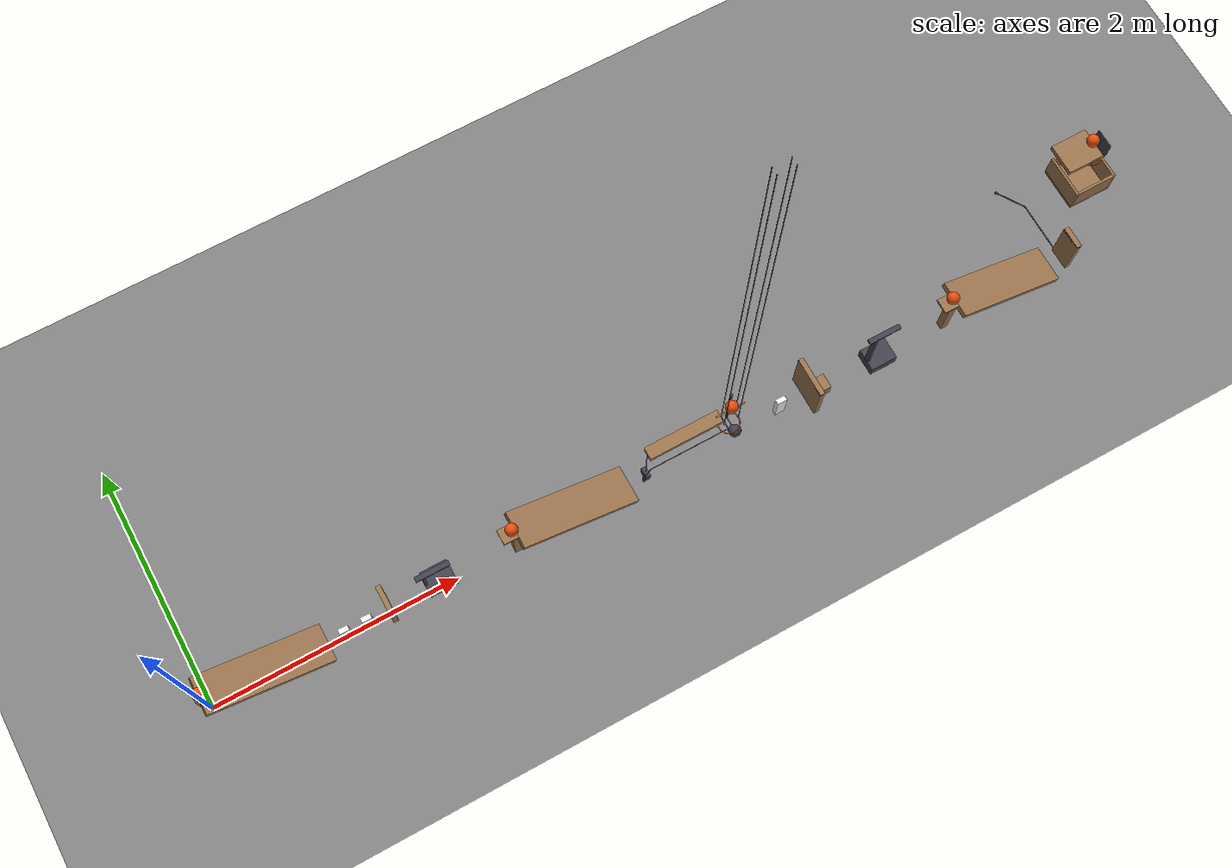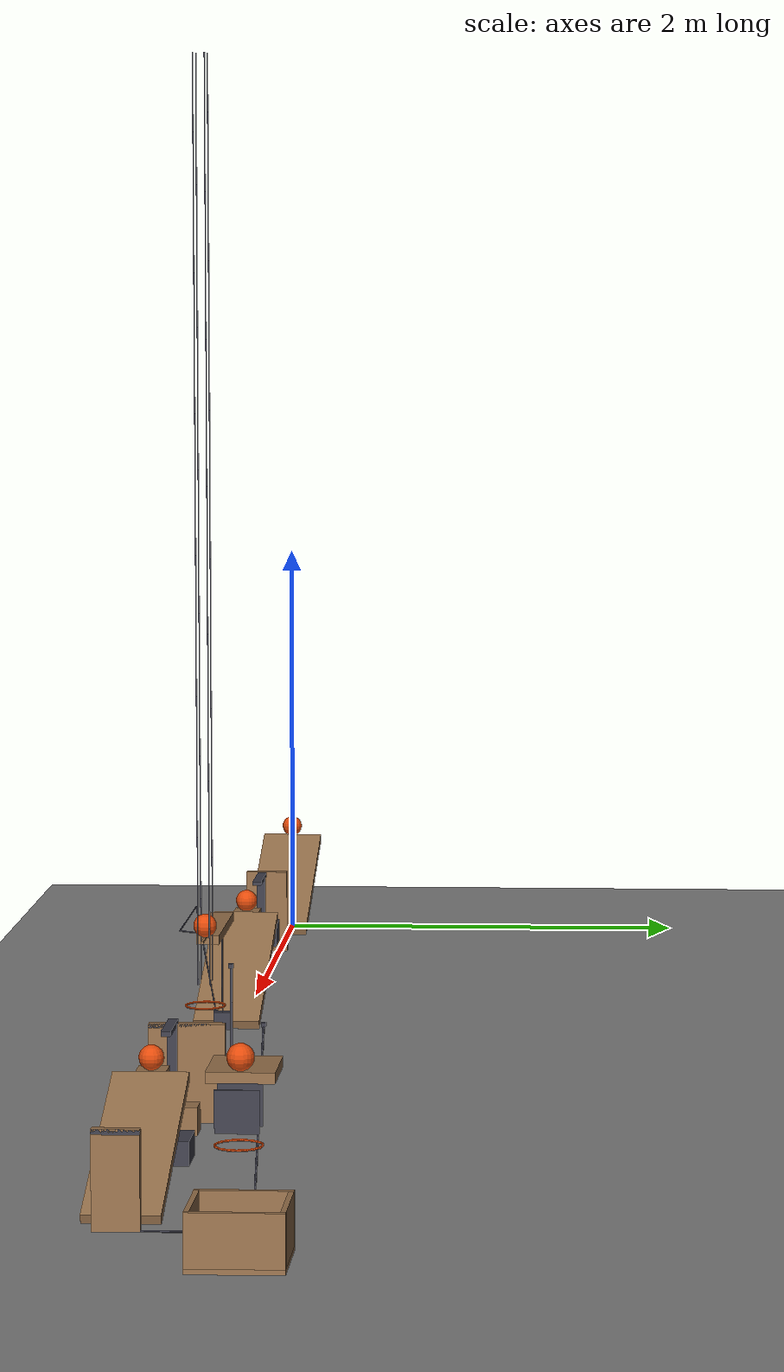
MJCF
<mujoco model="gravity_cascade_with_restrained_spring_launcher">
  <compiler angle="radian"/>
  <option timestep="0.002"/>
  <worldbody>
    <geom name="floor" type="plane" size="16 16 0.1" friction="0.7 0.005 0.002"/>
    <body name="ramp1">
      <geom name="ramp1_deck" type="box" pos="0.469846 0 0.302216" size="0.5 0.15 0.02" euler="0 0.349066 0" friction="0.7 0 0" solref="0.01 0.690107" rgba="0.6 0.45 0.3 1"/>
      <geom name="ramp1_leg" type="box" pos="0 0 0.236613" size="0.03 0.03 0.236613" friction="0.7 0 0" solref="0.01 0.690107" rgba="0.6 0.45 0.3 1"/>
    </body>
    <body name="ball1" pos="0.0239414 0 0.539005">
      <freejoint/>
      <geom name="ball1" type="sphere" pos="0 0 0" size="0.05" mass="0.2" condim="6" friction="0.7 0 0" solref="0.01 0.690107" rgba="0.9 0.3 0.05 1"/>
    </body>
    <body name="domino1" pos="1.08653 0 0.12">
      <freejoint/>
      <geom name="domino1" type="box" pos="0 0 0" size="0.04 0.02 0.12" mass="0.25" friction="0.7 0 0" solref="0.01 0.690107" rgba="0.95 0.95 0.95 1"/>
    </body>
    <body name="domino2" pos="1.26653 0 0.12">
      <freejoint/>
      <geom name="domino2" type="box" pos="0 0 0" size="0.04 0.02 0.12" mass="0.25" friction="0.7 0 0" solref="0.01 0.690107" rgba="0.95 0.95 0.95 1"/>
    </body>
    <body name="flap1" pos="1.44653 0 0.12">
      <joint name="flap1_hinge" type="hinge" pos="0 0 0" axis="0 1 0" limited="true" range="0 1.13446" damping="0.04"/>
      <geom name="flap1" type="box" pos="0 0 0.2" size="0.02 0.1 0.2" mass="0.3" friction="0.7 0 0" solref="0.01 0.690107" rgba="0.6 0.45 0.3 1"/>
    </body>
    <body name="cart1" pos="1.85653 0 0.28">
      <joint name="cart1_track" type="slide" pos="0 0 0" axis="1 0 0" limited="true" range="0 0.55" damping="0.2"/>
      <geom name="cart1" type="box" pos="0 0 0" size="0.11 0.09 0.05" mass="0.494" friction="0.7 0 0" solref="0.01 0.690107" rgba="0.25 0.25 0.3 1"/>
      <geom name="cart1 pusher stem" type="box" pos="-0.1 0 0.155" size="0.01 0.02 0.105" mass="0.003" friction="0.7 0 0" solref="0.01 0.690107" rgba="0.25 0.25 0.3 1"/>
      <geom name="cart1 pusher" type="box" pos="-0.025 0 0.26202" size="0.135 0.02 0.01" mass="0.003" friction="0.7 0 0" solref="0.01 0.690107" rgba="0.25 0.25 0.3 1"/>
    </body>
    <body name="ramp2">
      <geom name="ramp2_deck" type="box" pos="2.95454 0 0.302216" size="0.5 0.15 0.02" euler="0 0.349066 0" friction="0.7 0 0" solref="0.01 0.690107" rgba="0.6 0.45 0.3 1"/>
      <geom name="ramp2_leg" type="box" pos="2.48469 0 0.236613" size="0.03 0.03 0.236613" friction="0.7 0 0" solref="0.01 0.690107" rgba="0.6 0.45 0.3 1"/>
    </body>
    <body name="ramp2 starter">
      <geom name="ramp2 starter" type="box" pos="2.43153 0 0.48202" size="0.06 0.06 0.01" friction="0.7 0 0" solref="0.01 0.690107" rgba="0.6 0.45 0.3 1"/>
    </body>
    <body name="ball2" pos="2.46653 0 0.54202">
      <freejoint/>
      <geom name="ball2" type="sphere" pos="0 0 0" size="0.05" mass="0.2" condim="6" friction="0.7 0 0" solref="0.01 0.690107" rgba="0.9 0.3 0.05 1"/>
    </body>
    <body name="lever1" pos="3.87123 -0.05 0.65">
      <joint name="lever1_hinge" type="hinge" pos="0 0 0" axis="0 1 0" limited="true" range="-0.785398 0" stiffness="6" springref="-0.785398" damping="0.04"/>
      <geom name="lever1" type="box" pos="0 0.05 0" size="0.3 0.05 0.02" mass="0.296" friction="0.7 0 0" solref="0.01 0.690107" rgba="0.6 0.45 0.3 1"/>
      <geom name="lever1 left striker" type="box" pos="-0.3 0.05 -0.47" size="0.02 0.04 0.04" mass="0.2" friction="0.7 0 0" solref="0.01 0.690107" rgba="0.25 0.25 0.3 1"/>
      <geom name="lever1 striker stem" type="capsule" size="0.003" fromto="-0.3 0.05 -0.02 -0.3 0.05 -0.43" mass="0.001" friction="0.7 0 0" solref="0.01 0.690107" rgba="0.25 0.25 0.3 1"/>
      <geom name="lever1 launch tongue" type="box" pos="0.39 0.05 0.025" size="0.12 0.005 0.005" mass="0.003" friction="0.7 0 0" solref="0.01 0.690107" rgba="0.6 0.45 0.3 1"/>
    </body>
    <body name="lever1 release pad" pos="3.53623 -0.035 0.18">
      <joint name="lever1_release_track" type="slide" pos="0 0 0" axis="1 0 0" limited="true" range="0 0.02" damping="0.2"/>
      <geom name="lever1 release pad" type="box" pos="0 0 0" size="0.005 0.01 0.04" mass="0.01" friction="0.7 0 0" solref="0.01 0.690107" rgba="0.25 0.25 0.3 1"/>
      <geom name="lever1 release upright" type="capsule" size="0.003" fromto="0 0 0.04 0 -0.085 0.51" mass="0.001" friction="0.7 0 0" solref="0.01 0.690107" rgba="0.25 0.25 0.3 1"/>
      <geom name="lever1 release crossbar" type="capsule" size="0.003" fromto="0 -0.085 0.51 0.635 -0.085 0.51" mass="0.001" friction="0.7 0 0" solref="0.01 0.690107" rgba="0.25 0.25 0.3 1"/>
      <geom name="lever1 release peg bridge" type="capsule" size="0.003" fromto="0.635 -0.085 0.51 0.635 0 0.5" mass="0.001" friction="0.7 0 0" solref="0.01 0.690107" rgba="0.25 0.25 0.3 1"/>
      <geom name="lever1 release peg" type="box" pos="0.635 0 0.5" size="0.002 0.01 0.01" mass="0.001" friction="0.7 0 0" solref="0.01 0.690107" rgba="0.25 0.25 0.3 1"/>
    </body>
    <body name="ball3" pos="4.26623 0 0.73">
      <freejoint/>
      <geom name="ball3" type="sphere" pos="0 0 0" size="0.05" mass="0.2" condim="6" friction="0.7 0 0" solref="0.01 0.690107" rgba="0.9 0.3 0.05 1"/>
    </body>
    <body name="ball3 guide near left">
      <geom name="ball3 guide near left" type="box" pos="4.20623 0.025 2.48" size="0.002 0.002 2" friction="0.7 0 0" solref="0.01 0.690107" rgba="0.25 0.25 0.3 1"/>
    </body>
    <body name="ball3 guide near right">
      <geom name="ball3 guide near right" type="box" pos="4.20623 -0.025 2.48" size="0.002 0.002 2" friction="0.7 0 0" solref="0.01 0.690107" rgba="0.25 0.25 0.3 1"/>
    </body>
    <body name="ball3 guide far left">
      <geom name="ball3 guide far left" type="box" pos="4.32623 0.025 2.48" size="0.002 0.002 2" friction="0.7 0 0" solref="0.01 0.690107" rgba="0.25 0.25 0.3 1"/>
    </body>
    <body name="ball3 guide far right">
      <geom name="ball3 guide far right" type="box" pos="4.32623 -0.025 2.48" size="0.002 0.002 2" friction="0.7 0 0" solref="0.01 0.690107" rgba="0.25 0.25 0.3 1"/>
    </body>
    <body name="ring1">
      <geom name="ring1_00" type="capsule" size="0.004" fromto="4.35223 0 0.38 4.34568 0.0329108 0.38" friction="0.7 0 0" solref="0.01 0.690107" rgba="0.9 0.3 0.05 1"/>
      <geom name="ring1_01" type="capsule" size="0.004" fromto="4.34568 0.0329108 0.38 4.32704 0.0608112 0.38" friction="0.7 0 0" solref="0.01 0.690107" rgba="0.9 0.3 0.05 1"/>
      <geom name="ring1_02" type="capsule" size="0.004" fromto="4.32704 0.0608112 0.38 4.29914 0.0794536 0.38" friction="0.7 0 0" solref="0.01 0.690107" rgba="0.9 0.3 0.05 1"/>
      <geom name="ring1_03" type="capsule" size="0.004" fromto="4.29914 0.0794536 0.38 4.26623 0.086 0.38" friction="0.7 0 0" solref="0.01 0.690107" rgba="0.9 0.3 0.05 1"/>
      <geom name="ring1_04" type="capsule" size="0.004" fromto="4.26623 0.086 0.38 4.23331 0.0794536 0.38" friction="0.7 0 0" solref="0.01 0.690107" rgba="0.9 0.3 0.05 1"/>
      <geom name="ring1_05" type="capsule" size="0.004" fromto="4.23331 0.0794536 0.38 4.20541 0.0608112 0.38" friction="0.7 0 0" solref="0.01 0.690107" rgba="0.9 0.3 0.05 1"/>
      <geom name="ring1_06" type="capsule" size="0.004" fromto="4.20541 0.0608112 0.38 4.18677 0.0329108 0.38" friction="0.7 0 0" solref="0.01 0.690107" rgba="0.9 0.3 0.05 1"/>
      <geom name="ring1_07" type="capsule" size="0.004" fromto="4.18677 0.0329108 0.38 4.18023 1.0532e-17 0.38" friction="0.7 0 0" solref="0.01 0.690107" rgba="0.9 0.3 0.05 1"/>
      <geom name="ring1_08" type="capsule" size="0.004" fromto="4.18023 1.0532e-17 0.38 4.18677 -0.0329108 0.38" friction="0.7 0 0" solref="0.01 0.690107" rgba="0.9 0.3 0.05 1"/>
      <geom name="ring1_09" type="capsule" size="0.004" fromto="4.18677 -0.0329108 0.38 4.20541 -0.0608112 0.38" friction="0.7 0 0" solref="0.01 0.690107" rgba="0.9 0.3 0.05 1"/>
      <geom name="ring1_10" type="capsule" size="0.004" fromto="4.20541 -0.0608112 0.38 4.23331 -0.0794536 0.38" friction="0.7 0 0" solref="0.01 0.690107" rgba="0.9 0.3 0.05 1"/>
      <geom name="ring1_11" type="capsule" size="0.004" fromto="4.23331 -0.0794536 0.38 4.26623 -0.086 0.38" friction="0.7 0 0" solref="0.01 0.690107" rgba="0.9 0.3 0.05 1"/>
      <geom name="ring1_12" type="capsule" size="0.004" fromto="4.26623 -0.086 0.38 4.29914 -0.0794536 0.38" friction="0.7 0 0" solref="0.01 0.690107" rgba="0.9 0.3 0.05 1"/>
      <geom name="ring1_13" type="capsule" size="0.004" fromto="4.29914 -0.0794536 0.38 4.32704 -0.0608112 0.38" friction="0.7 0 0" solref="0.01 0.690107" rgba="0.9 0.3 0.05 1"/>
      <geom name="ring1_14" type="capsule" size="0.004" fromto="4.32704 -0.0608112 0.38 4.34568 -0.0329108 0.38" friction="0.7 0 0" solref="0.01 0.690107" rgba="0.9 0.3 0.05 1"/>
      <geom name="ring1_15" type="capsule" size="0.004" fromto="4.34568 -0.0329108 0.38 4.35223 -2.10639e-17 0.38" friction="0.7 0 0" solref="0.01 0.690107" rgba="0.9 0.3 0.05 1"/>
    </body>
    <body name="pendulum1" pos="4.34623 0.12 0.57">
      <joint name="pendulum1_hinge" type="hinge" pos="0 0 0" axis="0 1 0" limited="true" range="-0.698132 0" damping="0.04"/>
      <geom name="pendulum1" type="box" pos="0 0 -0.25" size="0.005 0.005 0.25" mass="0.005" friction="0.7 0 0" solref="0.01 0.690107" rgba="0.25 0.25 0.3 1"/>
      <geom name="pendulum1 bob" type="sphere" pos="0 -0.12 -0.5" size="0.05" mass="0.05" friction="0.7 0 0" solref="0.01 0.690107" rgba="0.25 0.25 0.3 1"/>
      <geom name="pendulum1 foot bridge" type="capsule" size="0.003" fromto="0 0 -0.5 0 -0.12 -0.5" mass="0.001" friction="0.7 0 0" solref="0.01 0.690107" rgba="0.25 0.25 0.3 1"/>
      <geom name="pendulum1 pivot ballast" type="box" pos="0 0 0" size="0.01 0.01 0.01" mass="0.294" friction="0.7 0 0" solref="0.01 0.690107" rgba="0.25 0.25 0.3 1"/>
    </body>
    <body name="domino3" pos="4.73482 0 0.12">
      <freejoint/>
      <geom name="domino3" type="box" pos="0 0 0" size="0.04 0.02 0.12" mass="0.005" friction="0.7 0 0" solref="0.01 0.690107" rgba="0.95 0.95 0.95 1"/>
      <geom name="domino3 foot ballast" type="box" pos="0.039 0 -0.115" size="0.001 0.02 0.005" mass="0.245" friction="0.7 0 0" solref="0.01 0.690107" rgba="0.25 0.25 0.3 1"/>
    </body>
    <body name="door1" pos="4.97482 0 0.02">
      <joint name="door1_hinge" type="hinge" pos="0 0 0" axis="0 1 0" limited="true" range="0 1.22173" damping="0.04"/>
      <geom name="door1" type="box" pos="0 0 0.21" size="0.02 0.16 0.21" mass="0.05" friction="0.7 0 0" solref="0.01 0.690107" rgba="0.6 0.45 0.3 1"/>
      <geom name="door1 upper rail" type="box" pos="0 0 0.41" size="0.02 0.16 0.01" mass="0.4" friction="0.7 0 0" solref="0.01 0.690107" rgba="0.25 0.25 0.3 1"/>
    </body>
    <body name="block1" pos="5.09482 0 0.06">
      <freejoint/>
      <geom name="block1" type="box" pos="0 0 0" size="0.06 0.06 0.06" mass="0.035" friction="0.7 0 0" solref="0.01 0.690107" rgba="0.6 0.45 0.3 1"/>
      <geom name="block1 rear ballast" type="box" pos="-0.055 0 -0.055" size="0.005 0.06 0.005" mass="0.315" friction="0.7 0 0" solref="0.01 0.690107" rgba="0.25 0.25 0.3 1"/>
    </body>
    <body name="cart2" pos="5.61482 0 0.055">
      <joint name="cart2_track" type="slide" pos="0 0 0" axis="1 0 0" limited="true" range="0 0.5" damping="0.2"/>
      <geom name="cart2" type="box" pos="0 0 0" size="0.11 0.09 0.05" mass="0.494" friction="0.7 0 0" solref="0.01 0.690107" rgba="0.25 0.25 0.3 1"/>
      <geom name="cart2 pusher stem" type="box" pos="-0.1 0 0.2675" size="0.01 0.02 0.2175" mass="0.003" friction="0.7 0 0" solref="0.01 0.690107" rgba="0.25 0.25 0.3 1"/>
      <geom name="cart2 pusher" type="box" pos="-0.025 0 0.48702" size="0.135 0.02 0.01" mass="0.003" friction="0.7 0 0" solref="0.01 0.690107" rgba="0.25 0.25 0.3 1"/>
    </body>
    <body name="ramp3">
      <geom name="ramp3_deck" type="box" pos="6.68283 0 0.302216" size="0.5 0.15 0.02" euler="0 0.349066 0" friction="0.7 0 0" solref="0.01 0.690107" rgba="0.6 0.45 0.3 1"/>
      <geom name="ramp3_leg" type="box" pos="6.21298 0 0.236613" size="0.03 0.03 0.236613" friction="0.7 0 0" solref="0.01 0.690107" rgba="0.6 0.45 0.3 1"/>
    </body>
    <body name="ramp3 starter">
      <geom name="ramp3 starter" type="box" pos="6.15982 0 0.48202" size="0.06 0.06 0.01" friction="0.7 0 0" solref="0.01 0.690107" rgba="0.6 0.45 0.3 1"/>
    </body>
    <body name="ball4" pos="6.19482 0 0.54202">
      <freejoint/>
      <geom name="ball4" type="sphere" pos="0 0 0" size="0.05" mass="0.2" condim="6" friction="0.7 0 0" solref="0.01 0.690107" rgba="0.9 0.3 0.05 1"/>
    </body>
    <body name="flap2" pos="7.27952 0 0.12">
      <joint name="flap2_hinge" type="hinge" pos="0 0 0" axis="0 1 0" limited="true" range="0 1.0472" damping="0.04"/>
      <geom name="flap2" type="box" pos="0 0 0.19" size="0.02 0.09 0.19" mass="0.047" friction="0.7 0 0" solref="0.01 0.690107" rgba="0.6 0.45 0.3 1"/>
      <geom name="flap2 upper rail" type="box" pos="0 0 0.37" size="0.02 0.09 0.01" mass="0.23" friction="0.7 0 0" solref="0.01 0.690107" rgba="0.25 0.25 0.3 1"/>
      <geom name="flap2 outboard bridge" type="capsule" size="0.004" fromto="0 0 0 0 0.5 0" mass="0.001" friction="0.7 0 0" solref="0.01 0.690107" rgba="0.25 0.25 0.3 1"/>
      <geom name="flap2 upper striker" type="capsule" size="0.004" fromto="0 0.5 0 -0.45 0.5 0.68" mass="0.001" friction="0.7 0 0" solref="0.01 0.690107" rgba="0.25 0.25 0.3 1"/>
      <geom name="flap2 striker cap" type="box" pos="-0.45 0.5 0.68" size="0.008 0.008 0.008" mass="0.001" friction="0.7 0 0" solref="0.01 0.690107" rgba="0.25 0.25 0.3 1"/>
    </body>
    <body name="shelf1">
      <geom name="shelf1" type="box" pos="7.55952 0.5 0.78" size="0.15 0.125 0.02" friction="0.7 0 0" solref="0.01 0.690107" rgba="0.6 0.45 0.3 1"/>
    </body>
    <body name="ball5" pos="7.68452 0.5 0.85">
      <freejoint/>
      <geom name="ball5" type="sphere" pos="0 0 0" size="0.05" mass="0.2" condim="6" friction="0.7 0 0" solref="0.01 0.690107" rgba="0.9 0.3 0.05 1"/>
    </body>
    <body name="ring2">
      <geom name="ring2_00" type="capsule" size="0.004" fromto="7.84552 0.5 0.55 7.83897 0.532911 0.55" friction="0.7 0 0" solref="0.01 0.690107" rgba="0.9 0.3 0.05 1"/>
      <geom name="ring2_01" type="capsule" size="0.004" fromto="7.83897 0.532911 0.55 7.82033 0.560811 0.55" friction="0.7 0 0" solref="0.01 0.690107" rgba="0.9 0.3 0.05 1"/>
      <geom name="ring2_02" type="capsule" size="0.004" fromto="7.82033 0.560811 0.55 7.79243 0.579454 0.55" friction="0.7 0 0" solref="0.01 0.690107" rgba="0.9 0.3 0.05 1"/>
      <geom name="ring2_03" type="capsule" size="0.004" fromto="7.79243 0.579454 0.55 7.75952 0.586 0.55" friction="0.7 0 0" solref="0.01 0.690107" rgba="0.9 0.3 0.05 1"/>
      <geom name="ring2_04" type="capsule" size="0.004" fromto="7.75952 0.586 0.55 7.72661 0.579454 0.55" friction="0.7 0 0" solref="0.01 0.690107" rgba="0.9 0.3 0.05 1"/>
      <geom name="ring2_05" type="capsule" size="0.004" fromto="7.72661 0.579454 0.55 7.6987 0.560811 0.55" friction="0.7 0 0" solref="0.01 0.690107" rgba="0.9 0.3 0.05 1"/>
      <geom name="ring2_06" type="capsule" size="0.004" fromto="7.6987 0.560811 0.55 7.68006 0.532911 0.55" friction="0.7 0 0" solref="0.01 0.690107" rgba="0.9 0.3 0.05 1"/>
      <geom name="ring2_07" type="capsule" size="0.004" fromto="7.68006 0.532911 0.55 7.67352 0.5 0.55" friction="0.7 0 0" solref="0.01 0.690107" rgba="0.9 0.3 0.05 1"/>
      <geom name="ring2_08" type="capsule" size="0.004" fromto="7.67352 0.5 0.55 7.68006 0.467089 0.55" friction="0.7 0 0" solref="0.01 0.690107" rgba="0.9 0.3 0.05 1"/>
      <geom name="ring2_09" type="capsule" size="0.004" fromto="7.68006 0.467089 0.55 7.6987 0.439189 0.55" friction="0.7 0 0" solref="0.01 0.690107" rgba="0.9 0.3 0.05 1"/>
      <geom name="ring2_10" type="capsule" size="0.004" fromto="7.6987 0.439189 0.55 7.72661 0.420546 0.55" friction="0.7 0 0" solref="0.01 0.690107" rgba="0.9 0.3 0.05 1"/>
      <geom name="ring2_11" type="capsule" size="0.004" fromto="7.72661 0.420546 0.55 7.75952 0.414 0.55" friction="0.7 0 0" solref="0.01 0.690107" rgba="0.9 0.3 0.05 1"/>
      <geom name="ring2_12" type="capsule" size="0.004" fromto="7.75952 0.414 0.55 7.79243 0.420546 0.55" friction="0.7 0 0" solref="0.01 0.690107" rgba="0.9 0.3 0.05 1"/>
      <geom name="ring2_13" type="capsule" size="0.004" fromto="7.79243 0.420546 0.55 7.82033 0.439189 0.55" friction="0.7 0 0" solref="0.01 0.690107" rgba="0.9 0.3 0.05 1"/>
      <geom name="ring2_14" type="capsule" size="0.004" fromto="7.82033 0.439189 0.55 7.83897 0.467089 0.55" friction="0.7 0 0" solref="0.01 0.690107" rgba="0.9 0.3 0.05 1"/>
      <geom name="ring2_15" type="capsule" size="0.004" fromto="7.83897 0.467089 0.55 7.84552 0.5 0.55" friction="0.7 0 0" solref="0.01 0.690107" rgba="0.9 0.3 0.05 1"/>
    </body>
    <body name="ball5 near guide">
      <geom name="ball5 near guide" type="box" pos="7.69952 0.5 0.6825" size="0.005 0.08 0.0775" friction="0.7 0 0" solref="0.01 0.690107" rgba="0.25 0.25 0.3 1"/>
    </body>
    <body name="ball5 far guide">
      <geom name="ball5 far guide" type="box" pos="7.81952 0.5 0.6825" size="0.005 0.08 0.0775" friction="0.7 0 0" solref="0.01 0.690107" rgba="0.25 0.25 0.3 1"/>
    </body>
    <body name="bin1">
      <geom name="bin1_base" type="box" pos="7.75952 0.5 0.14" size="0.18 0.18 0.01" friction="0.7 0.005 0.002" solref="0.01 0.690107" rgba="0.6 0.45 0.3 1"/>
      <geom name="bin1_near_wall" type="box" pos="7.58952 0.5 0.25" size="0.01 0.18 0.1" friction="0.7 0.005 0.002" solref="0.01 0.690107" rgba="0.6 0.45 0.3 1"/>
      <geom name="bin1_far_wall" type="box" pos="7.92952 0.5 0.25" size="0.01 0.18 0.1" friction="0.7 0.005 0.002" solref="0.01 0.690107" rgba="0.6 0.45 0.3 1"/>
      <geom name="bin1_left_wall" type="box" pos="7.75952 0.67 0.25" size="0.16 0.01 0.1" friction="0.7 0.005 0.002" solref="0.01 0.690107" rgba="0.6 0.45 0.3 1"/>
      <geom name="bin1_right_wall" type="box" pos="7.75952 0.33 0.25" size="0.16 0.01 0.1" friction="0.7 0.005 0.002" solref="0.01 0.690107" rgba="0.6 0.45 0.3 1"/>
    </body>
  </worldbody>
  <keyframe>
    <key name="start" qpos="0.0239414 0 0.539005 1 0 0 0 1.08653 0 0.12 1 0 0 0 1.26653 0 0.12 1 0 0 0 0 0 2.46653 0 0.54202 1 0 0 0 0 0 4.26623 0 0.73 1 0 0 0 0 4.73482 0 0.12 1 0 0 0 0 5.09482 0 0.06 1 0 0 0 0 6.19482 0 0.54202 1 0 0 0 0 7.68452 0.5 0.85 1 0 0 0" qvel="0 0 0 0 0 0 0 0 0 0 0 0 0 0 0 0 0 0 0 0 0 0 0 0 0 0 0 0 0 0 0 0 0 0 0 0 0 0 0 0 0 0 0 0 0 0 0 0 0 0 0 0 0 0 0 0 0 0 0 0 0 0"/>
  </keyframe>
</mujoco>
